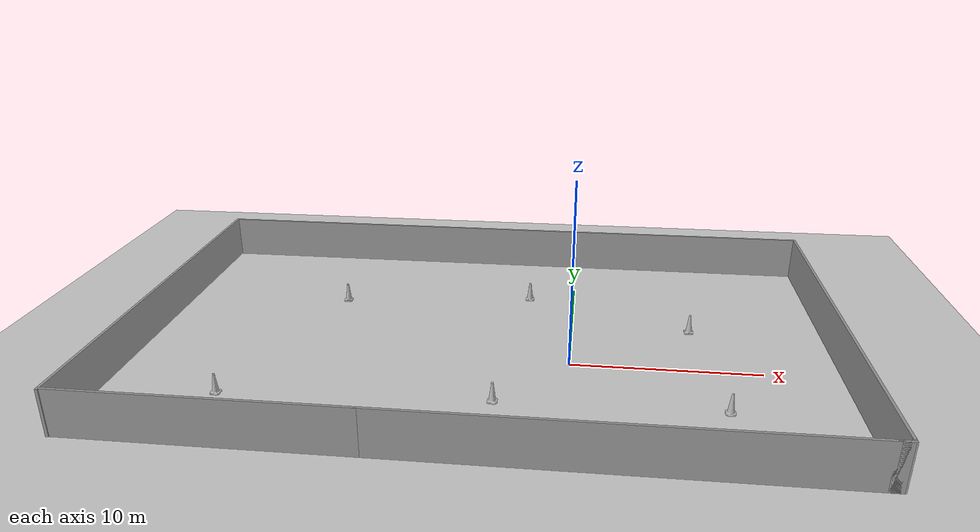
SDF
<sdf version="1.7">
 <world name="default">
  <model name="ground_plane">
   <static>1</static>
   <link name="link">
    <collision name="collision">
     <geometry><plane><normal>0 0 1</normal><size>100 100</size></plane></geometry>
     <surface>
      <contact><collide_bitmask>65535</collide_bitmask></contact>
      <friction><ode><mu>100</mu><mu2>50</mu2></ode></friction>
     </surface>
    </collision>
    <visual name="visual">
     <cast_shadows>0</cast_shadows>
     <geometry><plane><normal>0 0 1</normal><size>100 100</size></plane></geometry>
     <material>
      <script><uri>file://media/materials/scripts/gazebo.material</uri><name>Gazebo/Grey</name></script>
     </material>
    </visual>
   </link>
  </model>
  <light name="sun" type="directional">
   <pose>0 0 10 0 -0 0</pose>
   <diffuse>0.8 0.8 0.8 1</diffuse>
   <specular>0.2 0.2 0.2 1</specular>
   <attenuation>
    <range>1000</range>
    <constant>0.9</constant>
    <linear>0.01</linear>
    <quadratic>0.001</quadratic>
   </attenuation>
   <direction>-0.5 0.1 -0.9</direction>
   <spot><inner_angle>0</inner_angle><outer_angle>0</outer_angle><falloff>0</falloff></spot>
  </light>
  <gravity>0 0 -9.8</gravity>
  <magnetic_field>6e-06 2.3e-05 -4.2e-05</magnetic_field>
  <atmosphere type="adiabatic"/>
  <physics type="ode">
   <max_step_size>0.001</max_step_size>
   <real_time_factor>1</real_time_factor>
   <real_time_update_rate>1000</real_time_update_rate>
  </physics>
  <scene><ambient>0.4 0.4 0.4 1</ambient><background>0.7 0.7 0.7 1</background><shadows>1</shadows></scene>
  <spherical_coordinates>
   <surface_model>EARTH_WGS84</surface_model>
   <latitude_deg>0</latitude_deg>
   <longitude_deg>0</longitude_deg>
   <elevation>0</elevation>
   <heading_deg>0</heading_deg>
  </spherical_coordinates>
  <model name="Untitled">
   <model name="Construction Cone">
    <link name="link">
     <collision name="collision">
      <geometry>
       <mesh><scale>10 10 10</scale><uri>model://construction_cone/meshes/construction_cone.dae</uri></mesh>
      </geometry>
     </collision>
     <visual name="visual">
      <geometry>
       <mesh><scale>10 10 10</scale><uri>model://construction_cone/meshes/construction_cone.dae</uri></mesh>
      </geometry>
     </visual>
     <inertial>
      <inertia><ixx>1</ixx><ixy>0</ixy><ixz>0</ixz><iyy>1</iyy><iyz>0</iyz><izz>1</izz></inertia>
      <mass>1</mass>
     </inertial>
    </link>
    <pose>-4e-06 -1e-06 0 0 -0 0</pose>
   </model>
   <static>0</static>
   <pose>6.61954 4.64661 -0 0 -0 0</pose>
  </model>
  <model name="Untitled_0">
   <pose>-4.69186 2.22475 0 0 -0 0</pose>
   <link name="Wall_10">
    <collision name="Wall_10_Collision">
     <geometry><box><size>24.0912 0.15 2.5</size></box></geometry>
     <pose>0 0 1.25 0 -0 0</pose>
    </collision>
    <visual name="Wall_10_Visual">
     <pose>0 0 1.25 0 -0 0</pose>
     <geometry><box><size>24.0912 0.15 2.5</size></box></geometry>
     <material>
      <script><uri>file://media/materials/scripts/gazebo.material</uri><name>Gazebo/Grey</name></script>
      <ambient>1 1 1 1</ambient>
     </material>
     <meta><layer>0</layer></meta>
    </visual>
    <pose>-18.6912 0 0 0 -0 1.57018</pose>
   </link>
   <link name="Wall_11">
    <collision name="Wall_11_Collision">
     <geometry><box><size>37.4934 0.15 2.5</size></box></geometry>
     <pose>0 0 1.25 0 -0 0</pose>
    </collision>
    <visual name="Wall_11_Visual">
     <pose>0 0 1.25 0 -0 0</pose>
     <geometry><box><size>37.4934 0.15 2.5</size></box></geometry>
     <material>
      <script><uri>file://media/materials/scripts/gazebo.material</uri><name>Gazebo/Grey</name></script>
      <ambient>1 1 1 1</ambient>
     </material>
     <meta><layer>0</layer></meta>
    </visual>
    <pose>0.023398 11.9172 0 0 -0 -0.000953</pose>
   </link>
   <link name="Wall_12">
    <collision name="Wall_12_Collision">
     <geometry><box><size>23.75 0.15 2.5</size></box></geometry>
     <pose>0 0 1.25 0 -0 0</pose>
    </collision>
    <visual name="Wall_12_Visual">
     <pose>0 0 1.25 0 -0 0</pose>
     <geometry><box><size>23.75 0.15 2.5</size></box></geometry>
     <material>
      <script><uri>file://media/materials/scripts/gazebo.material</uri><name>Gazebo/Grey</name></script>
      <ambient>1 1 1 1</ambient>
     </material>
     <meta><layer>0</layer></meta>
    </visual>
    <pose>18.6951 0.099419 0 0 -0 -1.5708</pose>
   </link>
   <link name="Wall_14">
    <collision name="Wall_14_Collision">
     <geometry><box><size>22.5 0.15 2.5</size></box></geometry>
     <pose>0 0 1.25 0 -0 0</pose>
    </collision>
    <visual name="Wall_14_Visual">
     <pose>0 0 1.25 0 -0 0</pose>
     <geometry><box><size>22.5 0.15 2.5</size></box></geometry>
     <material>
      <script><uri>file://media/materials/scripts/gazebo.material</uri><name>Gazebo/Grey</name></script>
      <ambient>1 1 1 1</ambient>
     </material>
     <meta><layer>0</layer></meta>
    </visual>
    <pose>6.90987 -11.9162 0 0 -0 0</pose>
   </link>
   <link name="Wall_15">
    <collision name="Wall_15_Collision">
     <geometry><box><size>0.5 0.15 2.5</size></box></geometry>
     <pose>0 0 1.25 0 -0 0</pose>
    </collision>
    <visual name="Wall_15_Visual">
     <pose>0 0 1.25 0 -0 0</pose>
     <geometry><box><size>0.5 0.15 2.5</size></box></geometry>
     <material>
      <script><uri>file://media/materials/scripts/gazebo.material</uri><name>Gazebo/Grey</name></script>
      <ambient>1 1 1 1</ambient>
     </material>
     <meta><layer>0</layer></meta>
    </visual>
    <pose>18.2599 -11.9162 0 0 -0 0</pose>
   </link>
   <link name="Wall_17">
    <collision name="Wall_17_Collision">
     <geometry><box><size>0.5 0.15 2.5</size></box></geometry>
     <pose>0 0 1.25 0 -0 0</pose>
    </collision>
    <visual name="Wall_17_Visual">
     <pose>0 0 1.25 0 -0 0</pose>
     <geometry><box><size>0.5 0.15 2.5</size></box></geometry>
     <material>
      <script><uri>file://media/materials/scripts/gazebo.material</uri><name>Gazebo/Grey</name></script>
      <ambient>1 1 1 1</ambient>
     </material>
     <meta><layer>0</layer></meta>
    </visual>
    <pose>18.2599 -11.9162 0 0 -0 0</pose>
   </link>
   <link name="Wall_19">
    <collision name="Wall_19_Collision">
     <geometry><box><size>0.75 0.15 2.5</size></box></geometry>
     <pose>0 0 1.25 0 -0 0</pose>
    </collision>
    <visual name="Wall_19_Visual">
     <pose>0 0 1.25 0 -0 0</pose>
     <geometry><box><size>0.75 0.15 2.5</size></box></geometry>
     <material>
      <script><uri>file://media/materials/scripts/gazebo.material</uri><name>Gazebo/Grey</name></script>
      <ambient>1 1 1 1</ambient>
     </material>
     <meta><layer>0</layer></meta>
    </visual>
    <pose>18.3849 -11.9162 0 0 -0 0</pose>
   </link>
   <link name="Wall_20">
    <collision name="Wall_20_Collision">
     <geometry><box><size>0.365819 0.15 2.5</size></box></geometry>
     <pose>0 0 1.25 0 -0 0</pose>
    </collision>
    <visual name="Wall_20_Visual">
     <pose>0 0 1.25 0 -0 0</pose>
     <geometry><box><size>0.365819 0.15 2.5</size></box></geometry>
     <material>
      <script><uri>file://media/materials/scripts/gazebo.material</uri><name>Gazebo/Grey</name></script>
      <ambient>1 1 1 1</ambient>
     </material>
     <meta><layer>0</layer></meta>
    </visual>
    <pose>18.69 -11.8084 0 0 -0 1.52342</pose>
   </link>
   <link name="Wall_9">
    <collision name="Wall_9_Collision">
     <geometry><box><size>14.529 0.15 2.5</size></box></geometry>
     <pose>0 0 1.25 0 -0 0</pose>
    </collision>
    <visual name="Wall_9_Visual">
     <pose>0 0 1.25 0 -0 0</pose>
     <geometry><box><size>14.529 0.15 2.5</size></box></geometry>
     <material>
      <script><uri>file://media/materials/scripts/gazebo.material</uri><name>Gazebo/Grey</name></script>
      <ambient>1 1 1 1</ambient>
     </material>
     <meta><layer>0</layer></meta>
    </visual>
    <pose>-11.4546 -11.9162 0 0 -0 3.14159</pose>
   </link>
   <static>1</static>
  </model>
  <model name="Untitled_clone">
   <model name="Construction Cone">
    <link name="link">
     <collision name="collision">
      <geometry>
       <mesh><scale>10 10 10</scale><uri>model://construction_cone/meshes/construction_cone.dae</uri></mesh>
      </geometry>
     </collision>
     <visual name="visual">
      <geometry>
       <mesh><scale>10 10 10</scale><uri>model://construction_cone/meshes/construction_cone.dae</uri></mesh>
      </geometry>
     </visual>
     <inertial>
      <inertia><ixx>1</ixx><ixy>0</ixy><ixz>0</ixz><iyy>1</iyy><iyz>0</iyz><izz>1</izz></inertia>
      <mass>1</mass>
     </inertial>
    </link>
    <pose>-4e-06 -1e-06 0 0 -0 0</pose>
   </model>
   <static>0</static>
   <pose>-3.62595 -4.30516 -0 0 -1e-06 0</pose>
  </model>
  <model name="Untitled_clone_0">
   <model name="Construction Cone">
    <link name="link">
     <collision name="collision">
      <geometry>
       <mesh><scale>10 10 10</scale><uri>model://construction_cone/meshes/construction_cone.dae</uri></mesh>
      </geometry>
     </collision>
     <visual name="visual">
      <geometry>
       <mesh><scale>10 10 10</scale><uri>model://construction_cone/meshes/construction_cone.dae</uri></mesh>
      </geometry>
     </visual>
     <inertial>
      <inertia><ixx>1</ixx><ixy>0</ixy><ixz>0</ixz><iyy>1</iyy><iyz>0</iyz><izz>1</izz></inertia>
      <mass>1</mass>
     </inertial>
    </link>
    <pose>-4e-06 -1e-06 0 0 -0 0</pose>
   </model>
   <static>0</static>
   <pose>-13.7592 6.9468 -0 0 -0 0</pose>
  </model>
  <model name="Untitled_clone_1">
   <model name="Construction Cone">
    <link name="link">
     <collision name="collision">
      <geometry>
       <mesh><scale>10 10 10</scale><uri>model://construction_cone/meshes/construction_cone.dae</uri></mesh>
      </geometry>
     </collision>
     <visual name="visual">
      <geometry>
       <mesh><scale>10 10 10</scale><uri>model://construction_cone/meshes/construction_cone.dae</uri></mesh>
      </geometry>
     </visual>
     <inertial>
      <inertia><ixx>1</ixx><ixy>0</ixy><ixz>0</ixz><iyy>1</iyy><iyz>0</iyz><izz>1</izz></inertia>
      <mass>1</mass>
     </inertial>
    </link>
    <pose>-4e-06 -1e-06 0 0 -0 0</pose>
   </model>
   <static>0</static>
   <pose>-17.3782 -5.02514 0 -0 -0 -0</pose>
  </model>
  <model name="Untitled_clone_2">
   <model name="Construction Cone">
    <link name="link">
     <collision name="collision">
      <geometry>
       <mesh><scale>10 10 10</scale><uri>model://construction_cone/meshes/construction_cone.dae</uri></mesh>
      </geometry>
     </collision>
     <visual name="visual">
      <geometry>
       <mesh><scale>10 10 10</scale><uri>model://construction_cone/meshes/construction_cone.dae</uri></mesh>
      </geometry>
     </visual>
     <inertial>
      <inertia><ixx>1</ixx><ixy>0</ixy><ixz>0</ixz><iyy>1</iyy><iyz>0</iyz><izz>1</izz></inertia>
      <mass>1</mass>
     </inertial>
    </link>
    <pose>-4e-06 -1e-06 0 0 -0 0</pose>
   </model>
   <static>0</static>
   <pose>-2.66162 8.32152 -0 0 -1e-06 0</pose>
  </model>
  <model name="Untitled_clone_3">
   <model name="Construction Cone">
    <link name="link">
     <collision name="collision">
      <geometry>
       <mesh><scale>10 10 10</scale><uri>model://construction_cone/meshes/construction_cone.dae</uri></mesh>
      </geometry>
     </collision>
     <visual name="visual">
      <geometry>
       <mesh><scale>10 10 10</scale><uri>model://construction_cone/meshes/construction_cone.dae</uri></mesh>
      </geometry>
     </visual>
     <inertial>
      <inertia><ixx>1</ixx><ixy>0</ixy><ixz>0</ixz><iyy>1</iyy><iyz>0</iyz><izz>1</izz></inertia>
      <mass>1</mass>
     </inertial>
    </link>
    <pose>-4e-06 -1e-06 0 0 -0 0</pose>
   </model>
   <static>0</static>
   <pose>7.77608 -4.11695 -0 0 -1e-06 0</pose>
  </model>
 </world>
</sdf>
